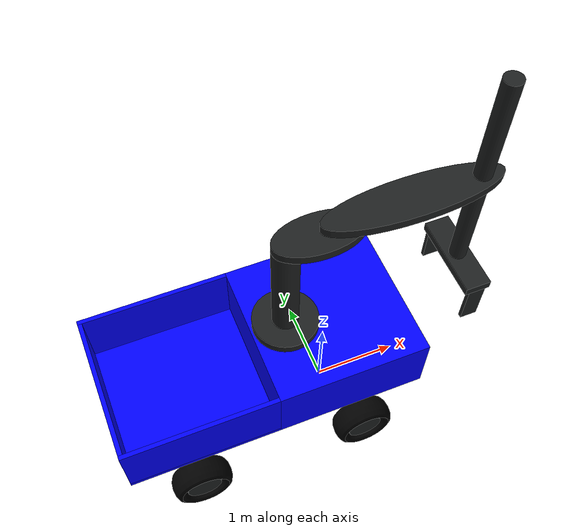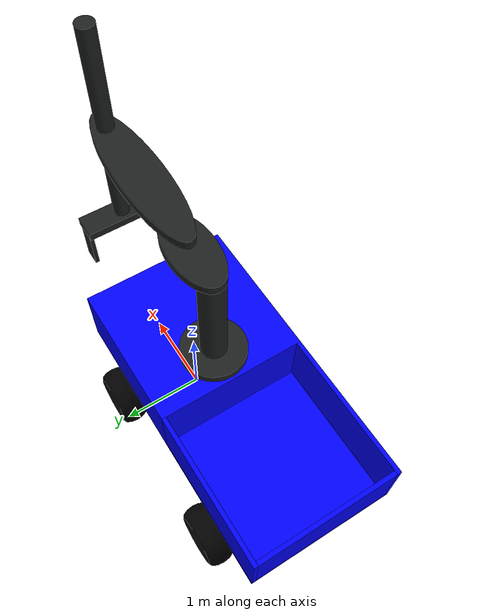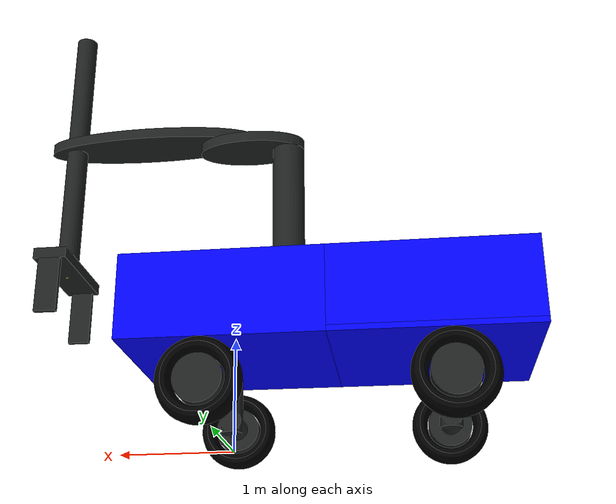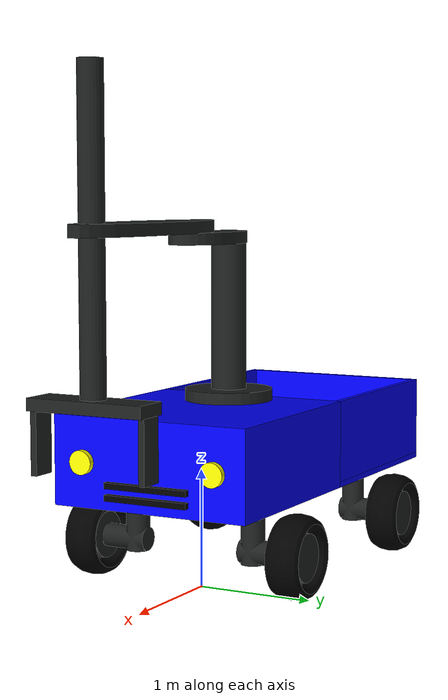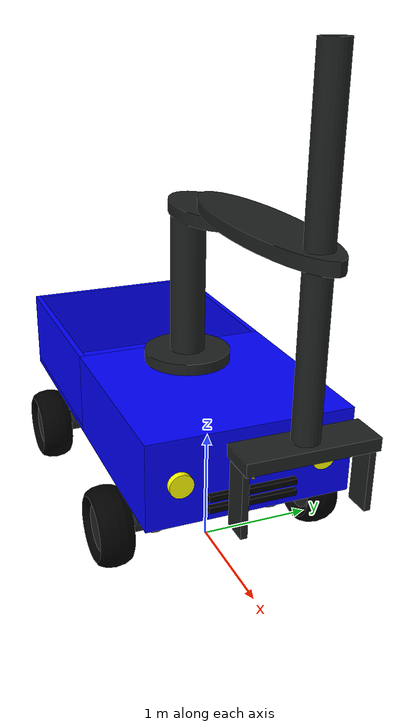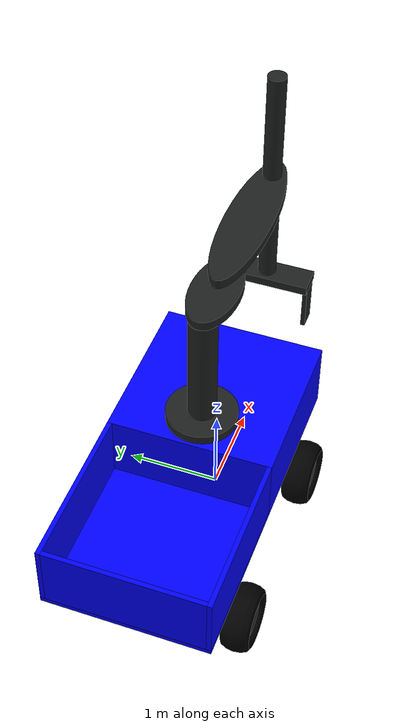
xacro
<?xml version="1.0"?>
<robot xmlns:xacro="http://wiki.ros.org/xacro" name="abitobot">
  <!--  includes  -->
  <xacro:include filename="$(find abitobot)/urdf/utils/utils.urdf.xacro" />
  <xacro:include filename="$(find abitobot)/urdf/base/robot_base.urdf.xacro" />
  <xacro:include filename="$(find abitobot)/urdf/wheels/robot_wheel.urdf.xacro" />
  <xacro:include filename="$(find abitobot)/urdf/arm/scara.urdf.xacro" />
  <xacro:include filename="$(find abitobot)/urdf/arm/gripper.urdf.xacro" />
  <xacro:include filename="$(find abitobot)/urdf/sensors/imu.urdf.xacro" />
  <xacro:include filename="$(find abitobot)/urdf/sensors/camera.urdf.xacro" />
  <!--  Propiedades  -->
  <xacro:property name="wheel_left_y" value="3.14159" />
  <xacro:property name="wheel_right_y" value="3.14159" />
  <xacro:property name="pose_camera_base" value="0.90000 0.00000 -0.06545" />
  <xacro:property name="pose_camera_gripper" value="0.00000 0.00000 -0.05" />
  <xacro:property name="ori_camera_base" value="0.00000 0.00000 0.00000" />
  <xacro:property name="ori_camera_gripper" value="0.00000 1.5708 0.00000" />

  <xacro:arg name="parent" default="base_link" />
  <xacro:arg name="parent_gripper" default="gripper_link" />

  <!--  Utils  -->
  <xacro:utils />
  <!--  Robot base  -->
  <xacro:robot_base prefix="$(arg parent)" />
  <!--  Wheels  -->
  <xacro:robot_wheel prefix="left_back" y="${wheel_left_y}" />
  <xacro:robot_wheel prefix="left_front" y="${wheel_left_y}" />
  <xacro:robot_wheel prefix="right_back" y="${wheel_right_y}" />
  <xacro:robot_wheel prefix="right_front" y="${wheel_right_y}" />
  <!--  Arm  -->
  <xacro:scara parent="$(arg parent)" />
  <xacro:gripper />
  <!--  IMU  -->
  <xacro:imu_sensor parent="$(arg parent)" />
  <!--  Camera  -->
  <xacro:camera prefix="" parent="$(arg parent)" pose="${pose_camera_base}" ori="${ori_camera_base}" />
  <xacro:camera prefix="_gripper" parent="$(arg parent_gripper)" pose="${pose_camera_gripper}" ori="${ori_camera_gripper}" />

  <!--  Gazebo  -->
  <xacro:include filename="$(find abitobot)/urdf/ros2_control.urdf.xacro"/>
  <xacro:arg name="config_controllers" default="$(find abitobot)/config/abitobot_controllers.yaml"/>
  <xacro:arg name="update_rate" default="20"/>
  <xacro:ros2_control/>

</robot>

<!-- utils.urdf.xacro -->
<robot name="abitobot" xmlns:xacro="http://wiki.ros.org/xacro">

  <xacro:macro name="utils" >

    <material name="gray">
      <color rgba="0.11765 0.12549 0.12549 1.00000" />
    </material>
    <material name="black">
      <color rgba="0.00000 0.00000 0.00000 1.00000" />
    </material>
    <material name="yellow">
      <color rgba="1.00000 1.00000 0.00000 1.00000" />
    </material>
    <material name="blue">
      <color rgba="0.00000 0.00000 1.00000 1.00000" />
    </material>

  </xacro:macro>
</robot>

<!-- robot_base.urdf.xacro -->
<robot xmlns:xacro="http://wiki.ros.org/xacro" name="abitobot">
  <xacro:macro name="robot_base" params="prefix">

    <link name="base_footprint">
      <visual name="base_footprint_visual">
        <origin xyz="0 0 0" rpy="0 0 0" />
        <geometry>
          <box size="0.01 0.01 0.01" />
        </geometry>
      </visual>
      <collision name="base_footprint_collision">
        <origin xyz="0 0 0" rpy="0 0 0" />
        <geometry>
          <box size="0.01 0.01 0.01" />
        </geometry>
      </collision>
    </link>

    <link name="base_link">
      <collision name="body_1_collision">
        <origin rpy="0.00000 0.00000 0.00000" xyz="0.00000 0.00000 0.00000" />
        <geometry>
          <mesh filename="file://$(find abitobot)/meshes/dae/Cube.dae"
            scale="0.87500 0.87500 0.37500" />
        </geometry>
      </collision>
      <visual name="body_1">
        <origin rpy="0.00000 0.00000 0.00000" xyz="0.00000 0.00000 0.00000" />
        <material name="blue" />
        <geometry>
          <box size="1.75000 1.75000 0.75000" />
        </geometry>
      </visual>
    </link>

    <link name="body_2_link">
      <collision name="body_2_collision">
        <origin rpy="0.00000 0.00000 0.00000" xyz="-0.00000 0.00000 0.00000" />
        <geometry>
          <box size="1.75000 1.75000 0.05000" />
        </geometry>
      </collision>
      <inertial>
        <inertia ixx="51.08333" ixy="0.00000" ixz="0.00000" iyy="51.08333" iyz="0.00000"
          izz="102.08333" />
        <origin rpy="0.00000 0.00000 0.00000" xyz="-0.00000 0.00000 0.00000" />
        <mass value="200.00000" />
      </inertial>
      <visual name="body_2">
        <origin rpy="0.00000 0.00000 0.00000" xyz="-0.00000 0.00000 0.00000" />
        <material name="blue" />
        <geometry>
          <box size="1.75000 1.75000 0.05000" />
        </geometry>
      </visual>
    </link>

    <link name="body_3_link">
      <collision name="body_3_collision">
        <origin rpy="0.00000 0.00000 0.00000" xyz="-0.00000 0.00000 0.00000" />
        <geometry>
          <box size="1.75000 0.70000 0.05000" />
        </geometry>
      </collision>
      <inertial>
        <inertia ixx="8.20833" ixy="0.00000" ixz="0.00000" iyy="59.20833" iyz="0.00000"
          izz="51.08333" />
        <origin rpy="0.00000 0.00000 0.00000" xyz="-0.00000 0.00000 0.00000" />
        <mass value="200.00000" />
      </inertial>
      <visual name="body_3">
        <origin rpy="0.00000 0.00000 0.00000" xyz="-0.00000 0.00000 0.00000" />
        <material name="blue" />
        <geometry>
          <box size="1.75000 0.70000 0.05000" />
        </geometry>
      </visual>
    </link>

    <link name="body_4_link">
      <collision name="body_4_collision">
        <origin rpy="0.00000 0.00000 0.00000" xyz="-0.00000 0.00000 0.00000" />
        <geometry>
          <box size="1.75000 0.70000 0.05000" />
        </geometry>
      </collision>
      <inertial>
        <inertia ixx="8.20833" ixy="0.00000" ixz="0.00000" iyy="59.20833" iyz="0.00000"
          izz="51.08333" />
        <origin rpy="0.00000 0.00000 0.00000" xyz="-0.00000 0.00000 0.00000" />
        <mass value="200.00000" />
      </inertial>
      <visual name="body_4">
        <origin rpy="0.00000 0.00000 0.00000" xyz="-0.00000 0.00000 0.00000" />
        <material name="blue" />
        <geometry>
          <box size="1.75000 0.70000 0.05000" />
        </geometry>
      </visual>
    </link>

    <link name="body_5_link">
      <collision name="body_5_collision">
        <origin rpy="0.00000 0.00000 0.00000" xyz="-0.00000 0.00000 -0.00000" />
        <geometry>
          <box size="1.65000 0.70000 0.05000" />
        </geometry>
      </collision>
      <inertial>
        <inertia ixx="53.54167" ixy="-0.00001" ixz="0.00000" iyy="8.20833" iyz="0.00001"
          izz="45.41667" />
        <origin rpy="0.00000 0.00000 0.00000" xyz="-0.00000 0.00000 -0.00000" />
        <mass value="200.00000" />
      </inertial>
      <visual name="body_5">
        <origin rpy="0.00000 0.00000 0.00000" xyz="-0.00000 0.00000 -0.00000" />
        <material name="blue" />
        <geometry>
          <box size="1.65000 0.70000 0.05000" />
        </geometry>
      </visual>
    </link>

    <link name="detail_1_link">
      <visual name="detail_1">
        <origin rpy="0.00000 0.00000 0.00000" xyz="0.00000 0.00000 0.00000" />
        <material name="black" />
        <geometry>
          <box size="0.05000 0.75000 0.05000" />
        </geometry>
      </visual>
    </link>

    <link name="detail_2_link">
      <visual name="detail_2">
        <origin rpy="0.00000 0.00000 0.00000" xyz="0.00000 0.00000 0.00000" />
        <material name="black" />
        <geometry>
          <box size="0.05000 0.75000 0.05000" />
        </geometry>
      </visual>
    </link>

    <link name="detail_3_link">
      <visual name="detail_4">
        <origin rpy="0.00000 0.00000 0.00000" xyz="-0.00000 0.00000 -0.00000" />
        <material name="yellow" />
        <geometry>
          <cylinder radius="0.10000" length="0.05000" />
        </geometry>
      </visual>
    </link>

    <link name="detail_4_link">
      <visual name="detail_3">
        <origin rpy="0.00000 0.00000 0.00000" xyz="-0.00000 0.00000 -0.00000" />
        <material name="yellow" />
        <geometry>
          <cylinder radius="0.10000" length="0.05000" />
        </geometry>
      </visual>
    </link>

    <link name="leg_left_back_link">
      <collision name="leg_left_back_collision">
        <origin rpy="0.00000 0.00000 -0.00000" xyz="-0.00000 -0.00000 -0.00000" />
        <geometry>
          <mesh filename="file://$(find abitobot)/meshes/dae/leg_left_back.dae"
            scale="0.10000 0.10000 0.25000" />
        </geometry>
      </collision>
      <inertial>
        <inertia ixx="0.24308" ixy="0.00000" ixz="0.00000" iyy="0.10269" iyz="-0.04235"
          izz="0.19817" />
        <origin rpy="0.00000 0.00000 0.00000" xyz="0.00000 -0.00000 0.00000" />
        <mass value="5.00000" />
      </inertial>
      <visual name="leg_left_back">
        <origin rpy="0.00000 0.00000 0.00000" xyz="0.00000 0.00000 0.00000" />
        <material name="gray" />
        <geometry>
          <mesh filename="file://$(find abitobot)/meshes/dae/leg_left_back.dae"
            scale="0.10000 0.10000 0.25000" />
        </geometry>
      </visual>
    </link>

    <link name="leg_left_front_link">
      <collision name="leg_left_front_collision">
        <origin rpy="0.00000 0.00000 -0.00000" xyz="0.00000 0.00000 -0.00000" />
        <geometry>
          <mesh
            filename="file://$(find abitobot)/meshes/dae/leg_left_front.dae"
            scale="0.10000 0.10000 0.25000" />
        </geometry>
      </collision>
      <inertial>
        <inertia ixx="0.24308" ixy="0.00000" ixz="0.00000" iyy="0.10269" iyz="-0.04235"
          izz="0.19817" />
        <origin rpy="0.00000 0.00000 0.00000" xyz="-0.00000 0.00000 -0.00000" />
        <mass value="5.00000" />
      </inertial>
      <visual name="leg_left_front">
        <origin rpy="0.00000 0.00000 0.00000" xyz="0.00000 0.00000 0.00000" />
        <material name="gray" />
        <geometry>
          <mesh
            filename="file://$(find abitobot)/meshes/dae/leg_left_front.dae"
            scale="0.10000 0.10000 0.25000" />
        </geometry>
      </visual>
    </link>

    <link name="leg_right_back_link">
      <collision name="leg_right_back_collision">
        <origin rpy="0.00000 0.00000 0.00000" xyz="0.00000 0.00000 -0.00000" />
        <geometry>
          <mesh
            filename="file://$(find abitobot)/meshes/dae/leg_right_back.dae"
            scale="0.10000 0.10000 0.25000" />
        </geometry>
      </collision>
      <inertial>
        <inertia ixx="0.24308" ixy="0.00000" ixz="-0.00000" iyy="0.10269" iyz="0.04235"
          izz="0.19817" />
        <origin rpy="0.00000 0.00000 0.00000" xyz="-0.00000 -0.00000 0.00000" />
        <mass value="5.00000" />
      </inertial>
      <visual name="leg_right_back">
        <origin rpy="0.00000 0.00000 0.00000" xyz="0.00000 0.00000 0.00000" />
        <material name="gray" />
        <geometry>
          <mesh
            filename="file://$(find abitobot)/meshes/dae/leg_right_back.dae"
            scale="0.10000 0.10000 0.25000" />
        </geometry>
      </visual>
    </link>

    <link name="leg_right_front_link">
      <collision name="leg_right_front_collision">
        <origin rpy="0.00000 0.00000 0.00000" xyz="0.00000 0.00000 -0.00000" />
        <geometry>
          <mesh
            filename="file://$(find abitobot)/meshes/dae/leg_right_front.dae"
            scale="0.10000 0.10000 0.25000" />
        </geometry>
      </collision>
      <inertial>
        <inertia ixx="0.24308" ixy="0.00000" ixz="-0.00000" iyy="0.10269" iyz="0.04235"
          izz="0.19817" />
        <origin rpy="0.00000 0.00000 0.00000" xyz="0.00000 -0.00000 0.00000" />
        <mass value="5.00000" />
      </inertial>
      <visual name="leg_right_front">
        <origin rpy="0.00000 0.00000 0.00000" xyz="0.00000 0.00000 0.00000" />
        <material name="gray" />
        <geometry>
          <mesh
            filename="file://$(find abitobot)/meshes/dae/leg_right_front.dae"
            scale="0.10000 0.10000 0.25000" />
        </geometry>
      </visual>
    </link>

    <joint name="base_joint" type="fixed">
      <origin rpy="0.00000 0.00000 0.00000" xyz="0 0.00000 1.15" />
      <parent link="base_footprint" />
      <child link="${prefix}" />
    </joint>
    <joint name="body_2_link_joint" type="fixed">
      <origin rpy="0.00000 0.00000 0.00000" xyz="-1.75000 0.00000 -0.34995" />
      <parent link="${prefix}" />
      <child link="body_2_link" />
    </joint>
    <joint name="body_3_link_joint" type="fixed">
      <origin rpy="1.57080 0.00000 0.00000" xyz="-1.75000 -0.85000 0.02505" />
      <parent link="${prefix}" />
      <child link="body_3_link" />
    </joint>
    <joint name="body_4_link_joint" type="fixed">
      <origin rpy="1.57080 0.00000 0.00000" xyz="-1.75000 0.85000 0.02505" />
      <parent link="${prefix}" />
      <child link="body_4_link" />
    </joint>
    <joint name="body_5_link_joint" type="fixed">
      <origin rpy="1.57080 0.00000 1.57080" xyz="-2.60000 0.00000 0.02505" />
      <parent link="${prefix}" />
      <child link="body_5_link" />
    </joint>
    <joint name="detail_1_link_joint" type="fixed">
      <origin rpy="0.00000 0.00000 0.00000" xyz="0.90000 0.00000 -0.16545" />
      <parent link="${prefix}" />
      <child link="detail_1_link" />
    </joint>
    <joint name="detail_2_link_joint" type="fixed">
      <origin rpy="0.00000 0.00000 0.00000" xyz="0.90000 0.00000 -0.26545" />
      <parent link="${prefix}" />
      <child link="detail_2_link" />
    </joint>
    <joint name="detail_3_link_joint" type="fixed">
      <origin rpy="-0.00000 1.57080 0.00000" xyz="0.90000 -0.60000 0.00000" />
      <parent link="${prefix}" />
      <child link="detail_3_link" />
    </joint>
    <joint name="detail_4_link_joint" type="fixed">
      <origin rpy="-0.00000 1.57080 0.00000" xyz="0.90000 0.60000 0.00000" />
      <parent link="${prefix}" />
      <child link="detail_4_link" />
    </joint>
    <joint name="leg_1_link_joint" type="fixed">
      <origin rpy="0.00000 0.00000 0.00000" xyz="0.12500 0.76176 -0.72133" />
      <parent link="${prefix}" />
      <child link="leg_left_front_link" />
    </joint>
    <joint name="leg_2_link_joint" type="fixed">
      <origin rpy="0.00000 0.00000 0.00000" xyz="-1.87500 0.76176 -0.72133" />
      <parent link="${prefix}" />
      <child link="leg_left_back_link" />
    </joint>
    <joint name="leg_3_link_joint" type="fixed">
      <origin rpy="0.00000 0.00000 -3.14159" xyz="-1.87500 -0.76176 -0.72133" />
      <parent link="${prefix}" />
      <child link="leg_right_back_link" />
    </joint>
    <joint name="leg_4_link_joint" type="fixed">
      <origin rpy="0.00000 0.00000 -3.14159" xyz="0.12500 -0.76176 -0.72133" />
      <parent link="${prefix}" />
      <child link="leg_right_front_link" />
    </joint>

  </xacro:macro>
</robot>

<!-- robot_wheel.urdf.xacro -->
<robot xmlns:xacro="http://wiki.ros.org/xacro" name="abitobot">
    <xacro:macro name="robot_wheel" params="prefix y">
        <link name="wheel_${prefix}_link">
            <collision name="wheel_${prefix}_collision">
                <origin rpy="-0.00000 0.00000 0.00000" xyz="0.00000 -0.00000 -0.00000"/>
                <geometry>
                    <mesh filename="file://$(find abitobot)/meshes/dae/wheel_${prefix}.dae" scale="0.28000 0.28000 0.60000"/>
                </geometry>
                <surface>
                  <friction>
                    <ode>
                      <mu>1.000000</mu>
                      <mu2>1.000000</mu2>
                      <fdir1>0.000000 0.000000 1.000000</fdir1>
                      <slip1>0.500000</slip1>
                      <slip2>0.500000</slip2>
                    </ode>
                  </friction>
                </surface>
            </collision>
            <inertial>
                <inertia ixx="0.16584" ixy="0.00000" ixz="0.00000" iyy="0.28737" iyz="0.00000" izz="0.16584"/>
                <origin rpy="0.00000 0.00000 0.00000" xyz="-0.00000 -0.00000 -0.00000"/>
                <mass value="5.00000"/>
            </inertial>
            <visual name="wheel_${prefix}">
                <origin rpy="-0.00000 0.00000 0.00000" xyz="0.00000 -0.00000 -0.00000"/>
                <material name="black"/>
                <geometry>
                    <mesh filename="file://$(find abitobot)/meshes/dae/wheel_${prefix}.dae" scale="0.28000 0.28000 0.60000"/>
                </geometry>
            </visual>
        </link>

        <joint name="wheel_${prefix}_joint" type="continuous">
            <limit effort="5000" velocity="100"/>
            <dynamics damping="0.05" friction="0.1"/>
            <origin rpy="1.57080 0.00000 ${y}" xyz="-0.00000 0.18824 -0.04412"/>
            <parent link="leg_${prefix}_link"/>
            <child link="wheel_${prefix}_link"/>
            <axis xyz="0.00000 0.00000 1.00000"/>
        </joint>

        <transmission name="wheel_${prefix}_joint_trans">
          <type>transmission_interface/SimpleTransmission</type>
          <joint name="wheel_${prefix}_joint">
            <hardwareInterface>hardware_interface/VelocityJointInterface</hardwareInterface>
          </joint>
          <actuator name="wheel_${prefix}_joint_motor">
            <mechanicalReduction>1</mechanicalReduction>
          </actuator>
        </transmission>

        <gazebo reference="wheel_${prefix}_link">
          <mu1>5</mu1>
          <mu2>5</mu2>
        </gazebo>

    </xacro:macro>
</robot>

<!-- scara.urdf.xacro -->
<robot xmlns:xacro="http://wiki.ros.org/xacro" name="abitobot">
  <xacro:macro name="scara" params="parent">
    <joint name="arm_1_link_joint" type="continuous">
      <limit lower="0" upper="0" effort="5000" velocity="100" />
      <origin rpy="0.00000 0.00000 0.00000" xyz="0.00000 -0.00000 0.82869" />
      <parent link="base_arm_link" />
      <child link="arm_1_link" />
      <axis xyz="0.00000 0.00000 1.00000" />
    </joint>
    <joint name="arm_2_link_joint" type="continuous">
      <limit lower="0" upper="0" effort="5000" velocity="100" />
      <origin rpy="0.00000 0.00000 0.00000" xyz="0.65000 -0.00000 0.1000" />
      <parent link="arm_1_link" />
      <child link="arm_2_link" />
      <axis xyz="0.00000 0.00000 1.00000" />
    </joint>
    <joint name="arm_3_link_joint" type="prismatic">
      <limit lower="-1.15000" upper="1.15000" effort="5000" velocity="100" />
      <origin rpy="0.00000 0.00000 0.00000" xyz="1.45000 0.00000 0.00000" />
      <parent link="arm_2_link" />
      <child link="arm_3_link" />
      <axis xyz="0.00000 0.00000 1.00000" />
    </joint>
    <joint name="base_link_joint" type="fixed">
      <origin rpy="0.00000 0.00000 0.00000" xyz="-0.47500 0.00000 0.95586" />
      <parent link="${parent}" />
      <child link="base_arm_link" />
    </joint>

    <link name="arm_1_link">
      <collision name="arm_1_collision">
        <origin rpy="0.00000 0.00000 0.00000" xyz="0.35000 0.00000 0.00000" />
        <geometry>
          <mesh filename="file://$(find abitobot)/meshes/dae/arm_1.dae"
            scale="0.50000 0.25000 0.05000" />
        </geometry>
      </collision>
      <inertial>
        <inertia ixx="0.03272" ixy="0.00000" ixz="-0.00000" iyy="0.12587" iyz="0.00000"
          izz="0.15525" />
        <origin rpy="0.00000 0.00000 0.00000" xyz="0.35000 -0.00000 -0.00000" />
        <mass value="2.00000" />
      </inertial>
      <visual name="arm_1">
        <origin rpy="0.00000 0.00000 0.00000" xyz="0.35000 0.00000 -0.00000" />
        <material name="gray" />
        <geometry>
          <mesh filename="file://$(find abitobot)/meshes/dae/arm_1.dae"
            scale="0.50000 0.25000 0.05000" />
        </geometry>
      </visual>
    </link>
    <link name="arm_2_link">
      <collision name="arm_2_collision">
        <origin rpy="0.00000 0.00000 0.00000" xyz="0.70000 0.00000 0.00000" />
        <geometry>
          <mesh filename="file://$(find abitobot)/meshes/dae/arm_2.dae"
            scale="1.00000 0.25000 0.05000" />
        </geometry>
      </collision>
      <inertial>
        <inertia ixx="0.03272" ixy="-0.00000" ixz="-0.00000" iyy="0.49846" iyz="0.00000"
          izz="0.52785" />
        <origin rpy="0.00000 0.00000 0.00000" xyz="0.70000 -0.00000 0.00000" />
        <mass value="2.00000" />
      </inertial>
      <visual name="arm_2">
        <origin rpy="0.00000 0.00000 0.00000" xyz="0.70000 0.00000 0.00000" />
        <material name="gray" />
        <geometry>
          <mesh filename="file://$(find abitobot)/meshes/dae/arm_2.dae"
            scale="1.00000 0.25000 0.05000" />
        </geometry>
      </visual>
    </link>
    <link name="arm_3_link">
      <inertial>
        <inertia ixx="2.09333" ixy="0.00000" ixz="0.00000" iyy="2.09333" iyz="0.00000"
          izz="0.02000" />
        <origin rpy="0.00000 0.00000 0.00000" xyz="0.00000 0.00000 0.00000" />
        <mass value="4.00000" />
      </inertial>
      <visual name="arm_3">
        <origin rpy="0.00000 0.00000 0.00000" xyz="0.00000 0.00000 0.00000" />
        <material name="gray" />
        <geometry>
          <cylinder radius="0.10000" length="2.50000" />
        </geometry>
      </visual>
    </link>
    <link name="base_arm_link">
      <collision name="base_arm_collision">
        <origin rpy="0.00000 0.00000 0.00000" xyz="0.00000 -0.00000 0.00000" />
        <geometry>
          <mesh filename="file://$(find abitobot)/meshes/dae/base_arm.dae"
            scale="0.37500 0.37500 0.05000" />
        </geometry>
      </collision>
      <inertial>
        <inertia ixx="15.95192" ixy="-0.00000" ixz="0.00000" iyy="15.95192" iyz="-0.00000"
          izz="3.50969" />
        <origin rpy="0.00000 0.00000 0.00000" xyz="0.00000 -0.00000 -0.07130" />
        <mass value="100.00000" />
      </inertial>
      <visual name="base_arm">
        <origin rpy="0.00000 0.00000 0.00000" xyz="0.00000 0.00000 0.00000" />
        <material name="gray" />
        <geometry>
          <mesh filename="file://$(find abitobot)/meshes/dae/base_arm.dae"
            scale="0.37500 0.37500 0.05000" />
        </geometry>
      </visual>
    </link>
  </xacro:macro>
</robot>

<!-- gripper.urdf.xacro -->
<robot xmlns:xacro="http://wiki.ros.org/xacro" name="abitobot">
  <xacro:macro name="gripper">
    <joint name="gripper_left_link_joint" type="prismatic">
      <limit lower="0.00000" upper="0.30000" effort="5000" velocity="100" />
      <origin rpy="-1.57080 0.00000 0.00000" xyz="-0.00000 -0.47500 -0.30000" />
      <parent link="gripper_link" />
      <child link="gripper_left_link" />
      <axis xyz="0.00000 0.00000 1.00000" />
    </joint>
    <joint name="gripper_link_joint" type="continuous">
      <limit lower="0" upper="0" effort="5000" velocity="100" />
      <origin rpy="0.00000 0.00000 0.00000" xyz="0.00000 0.00000 -1.30000" />
      <parent link="arm_3_link" />
      <child link="gripper_link" />
      <axis xyz="0.00000 0.00000 1.00000" />
    </joint>
    <joint name="gripper_right_link_joint" type="prismatic">
      <limit lower="0.00000" upper="0.30000" effort="5000" velocity="100" />
      <origin rpy="1.57080 0.00000 0.00000" xyz="-0.00000 0.47500 -0.30000" />
      <parent link="gripper_link" />
      <child link="gripper_right_link" />
      <axis xyz="0.00000 0.00000 1.00000" />
    </joint>

    <link name="gripper_left_link">
      <collision name="gripper_left_collision">
        <origin rpy="-0.00000 0.00000 0.00000" xyz="-0.00000 -0.00000 0.00000" />
        <geometry>
          <mesh filename="file://$(find abitobot)/meshes/dae/gripper_left.dae" scale="0.10000 0.25000 0.02500" />
        </geometry>
      </collision>
      <inertial>
        <inertia ixx="0.04208" ixy="0.00000" ixz="0.00000" iyy="0.04833" iyz="0.00000" izz="0.00708" />
        <origin rpy="0.00000 0.00000 0.00000" xyz="-0.00000 0.00000 0.00000" />
        <mass value="2.00000" />
      </inertial>
      <visual name="gripper_left">
        <origin rpy="-0.00000 0.00000 0.00000" xyz="-0.00000 -0.00000 0.00000" />
        <material name="gray" />
        <geometry>
          <box size="0.20000 0.50000 0.05000" />
        </geometry>
      </visual>
    </link>
    <link name="gripper_link">
      <collision name="gripper_collision">
        <origin rpy="0.00000 0.00000 0.00000" xyz="-0.00000 0.00000 0.00000" />
        <geometry>
          <mesh filename="file://$(find abitobot)/meshes/dae/gripper.dae" scale="0.15000 0.50000 0.05000" />
        </geometry>
      </collision>
      <inertial>
        <inertia ixx="0.16833" ixy="0.00000" ixz="0.00000" iyy="0.01667" iyz="0.00000" izz="0.18167" />
        <origin rpy="0.00000 0.00000 0.00000" xyz="-0.00000 0.00000 0.00000" />
        <mass value="2.00000" />
      </inertial>
      <visual name="gripper">
        <origin rpy="0.00000 0.00000 0.00000" xyz="-0.00000 0.00000 -0.00000" />
        <material name="gray" />
        <geometry>
          <box size="0.30000 1.00000 0.10000" />
        </geometry>
      </visual>
    </link>
    <link name="gripper_right_link">
      <collision name="gripper_right_collision">
        <origin rpy="0.00000 0.00000 0.00000" xyz="-0.00000 0.00000 0.00000" />
        <geometry>
          <mesh filename="file://$(find abitobot)/meshes/dae/gripper_right.dae" scale="0.10000 0.25000 0.02500" />
        </geometry>
      </collision>
      <inertial>
        <inertia ixx="0.04208" ixy="0.00000" ixz="0.00000" iyy="0.04833" iyz="0.00000" izz="0.00708" />
        <origin rpy="0.00000 0.00000 0.00000" xyz="-0.00000 0.00000 0.00000" />
        <mass value="2.00000" />
      </inertial>
      <visual name="gripper_right">
        <origin rpy="0.00000 0.00000 0.00000" xyz="-0.00000 0.00000 0.00000" />
        <material name="gray" />
        <geometry>
          <box size="0.20000 0.50000 0.05000" />
        </geometry>
      </visual>
    </link>
  </xacro:macro>
</robot>

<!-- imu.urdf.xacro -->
<robot xmlns:xacro="http://www.ros.org/wiki/xacro" name="abitobot">
  <!-- IMU Link -->
  <xacro:macro name="imu_sensor" params="parent">

    <link name="imu_link">
      <visual name="imu_visual">
        <geometry>
          <box size="0.10000 0.10000 0.10000"/>
        </geometry>
        <material name="blue" />
      </visual>
    </link>

    <!-- IMU Joint -->
    <joint name="imu_joint" type="fixed">
      <parent link="${parent}" />
      <child link="imu_link" />
      <origin xyz="0 0 0" rpy="0 0 0" />
    </joint>

    <gazebo reference="imu_link">
      <sensor name="imu_sensor" type="imu">
        <always_on>1</always_on>
        <update_rate>50</update_rate>
        <topic>imu/data</topic>
        <imu>
          <linear_acceleration>
            <noise type="none"/>
          </linear_acceleration>
        </imu>
      </sensor>
    </gazebo>

  </xacro:macro>
</robot>

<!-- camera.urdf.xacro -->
<robot xmlns:xacro="http://www.ros.org/wiki/xacro" name="abitobot">
  <xacro:macro name="camera" params="parent prefix pose ori">
    <link name="camera${prefix}_optical_link">
      <visual>
        <material name="gray" />
        <geometry>
          <box size="0.02 0.02 0.01" /> <!-- Small rectangle -->
        </geometry>
      </visual>
    </link>

    <link name="camera${prefix}_link">
      <visual>
        <geometry>
          <box size="0.02 0.02 0.01" /> <!-- Small rectangle -->
        </geometry>
        <material name="yellow" />
      </visual>
      <collision>
        <geometry>
          <box size="0.02 0.02 0.01" /> <!-- Small rectangle -->
        </geometry>
      </collision>
    </link>
    <joint name="camera${prefix}_joint" type="fixed">
      <parent link="${parent}" />
      <child link="camera${prefix}_link" />
      <origin rpy="${ori}" xyz="${pose}" />
    </joint>

    <joint name="camera${prefix}_optical_joint" type="fixed">
      <parent link="camera${prefix}_link" />
      <child link="camera${prefix}_optical_link" />
      <origin xyz="0 0 0" rpy="-1.5708 0 -1.5708" /> <!-- Adjust orientation for optical frame -->
    </joint>

    <gazebo reference="camera${prefix}_link">
      <sensor name="camera${prefix}_link" type="camera">
        <visualize>true</visualize>
        <update_rate>30</update_rate>
        <topic>/camera${prefix}/image</topic>
        <camera>
          <horizontal_fov>1.57</horizontal_fov>
          <image>
            <width>640</width>
            <height>480</height>
            <format>R8G8B8</format>
          </image>
          <clip>
            <near>0.10</near>
            <far>15.0</far>
          </clip>
          <noise>
            <type>gaussian</type>
            <mean>0.0</mean>
            <stddev>0.007</stddev>
          </noise>
          <optical_frame_id>camera${prefix}_link</optical_frame_id>
        </camera>
      </sensor>
    </gazebo>

  </xacro:macro>

</robot>
